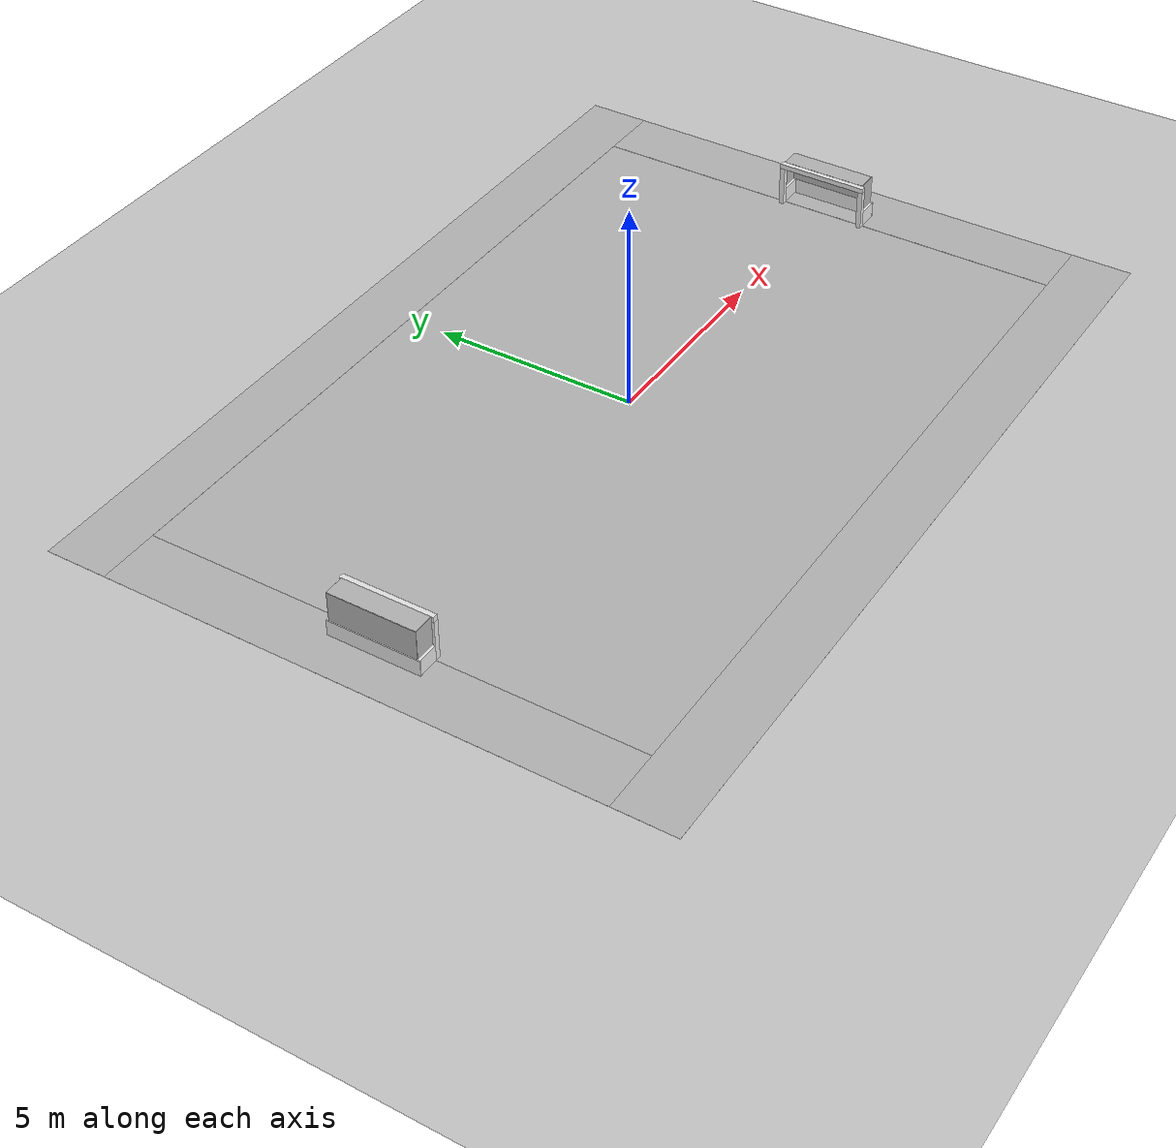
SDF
<?xml version="1.0" ?>
<sdf version='1.5'>
  <world name='RoboCup15MSL'>
<!-- scene -->
    <scene>
      <ambient>0.4 0.4 0.4 1</ambient>
      <background>0.7 0.7 0.7 1</background>
      <shadows>0</shadows>
    </scene>

<!-- spherical_coordinates -->
    <spherical_coordinates>
      <surface_model>EARTH_WGS84</surface_model>
      <latitude_deg>0</latitude_deg>
      <longitude_deg>0</longitude_deg>
      <elevation>0</elevation>
      <heading_deg>0</heading_deg>
    </spherical_coordinates>

<!-- lighting -->
 <light type="directional" name="sun">
    <cast_shadows>true</cast_shadows>

    <pose>0 0 10 0 0 0</pose>
    <diffuse>0.8 0.8 0.8 1</diffuse>
    <specular>0.2 0.2 0.2 1</specular>

    <attenuation>
      <range>1000</range>
      <constant>0.9</constant>
      <linear>0.01</linear>
      <quadratic>0.001</quadratic>
    </attenuation>

    <direction>-0.5 0.1 -0.9</direction>
  </light>

<!-- gui -->
    <gui fullscreen='0'>
      <camera name='user_camera'>
        <pose>0 -16 10 0 0.53 1.57</pose>
        <view_controller>orbit</view_controller>
      </camera>
    </gui>

<!-- physics -->
     <physics type='ode'>
      <max_step_size>0.007</max_step_size>
      <real_time_factor>1</real_time_factor>
      <real_time_update_rate>150</real_time_update_rate>
      <gravity>0 0 -9.8</gravity>
    </physics>

<!-- The same as model://ground_plane -->
    <model name='ground_plane'>
      <static>true</static>
      <link name='link'>
        <collision name='collision'>
          <geometry>
            <plane>
              <normal>0 0 1</normal>
              <size>100 100</size>
            </plane>
          </geometry>
          <surface>
            <friction>
              <ode>
                <mu>100</mu>    <!-- set the friction in field model. here is not useful-->
                <mu2>50</mu2>
              </ode>
            </friction>
            <contact>
              <ode/>
            </contact>
            <bounce/>
          </surface>
          <max_contacts>10</max_contacts>
        </collision>
        <visual name='visual'>
          <cast_shadows>0</cast_shadows>
          <geometry>
            <plane>
              <normal>0 0 1</normal>
              <size>100 100</size>
            </plane>
          </geometry>
          <material>
            <script>
              <uri>file://media/materials/scripts/gazebo.material</uri>
              <name>Gazebo/Grey</name>
            </script>
          </material>
        </visual>
        <velocity_decay>
          <linear>0</linear>
          <angular>0</angular>
        </velocity_decay>
        <self_collide>0</self_collide>
        <kinematic>0</kinematic>
        <gravity>1</gravity>
      </link>
    </model>

<!-- RoboCup 2015 MSL Field -->
    <include>
        <pose>0 0 0 0 0 0</pose>
        <uri>model://RoboCup15_MSL_Field</uri>
        <name>field</name>
        <static>true</static>
    </include>

<!-- RoboCup 2015 MSL Goal left -->
    <include>
        <pose>-9 0 0.01 0 0 3.14 </pose>
        <uri>model://RoboCup15_MSL_Goal</uri>
        <name>left_goal</name>
        <static>true</static>
    </include>

<!-- RoboCup 2015 MSL Goal right -->
   <include>
        <pose>9 0 0.01 0 0 0 </pose>
        <uri>model://RoboCup15_MSL_Goal</uri>
        <name>right_goal</name>
        <static>true</static>
    </include>
  </world>
</sdf>

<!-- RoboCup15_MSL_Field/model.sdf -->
<sdf version="1.4">
  <model name="RoboCup15_MSL_Field">
    <static>true</static>

    <link name="field">
      <pose>0 0 0.01 0 0 0</pose>
      <collision name="collision">
        <geometry>
          <plane>
            <normal>0 0 1</normal>
            <size>18 12</size>
          </plane>
        </geometry>
        <surface>
          <friction>
            <ode>
              <mu>100</mu>
              <mu2>50</mu2>
            </ode>
          </friction>
        </surface>
      </collision>

      <visual name="carpet">
        <cast_shadows>false</cast_shadows>
        <geometry>
          <plane>
            <normal>0 0 1</normal>
            <size>18 12</size>
          </plane>
        </geometry>
        <material>
          <script>
            <uri>file://materials/scripts/</uri>
            <uri>file://materials/textures/</uri>
            <name>RoboCup/Carpet</name>
          </script>
        </material>
      </visual>

       <visual name="base1">
        <pose>0 6.75 0.01 0 0 0</pose>
        <cast_shadows>false</cast_shadows>
        <geometry>
          <plane>
            <normal>0 0 1</normal>
            <size>21.0 1.5</size>
          </plane>
        </geometry>
        <material>
          <script>
            <uri>model://robocup_3Dsim_field/materials/scripts/</uri>
            <uri>model://robocup_3Dsim_field/materials/textures/</uri>
            <name>RoboCup/FieldBorder</name>
          </script>
        </material>
      </visual>
      <visual name="base2">
        <pose>0 -6.75 0.01 0 0 0</pose>
        <cast_shadows>false</cast_shadows>
        <geometry>
          <plane>
            <normal>0 0 1</normal>
            <size>21.0 1.5</size>
          </plane>
        </geometry>
        <material>
          <script>
            <uri>model://robocup_3Dsim_field/materials/scripts/</uri>
            <uri>model://robocup_3Dsim_field/materials/textures/</uri>
            <name>RoboCup/FieldBorder</name>
          </script>
        </material>
      </visual>
      <visual name="base3">
        <pose>9.75 0 0.01 0 0 0</pose>
        <cast_shadows>false</cast_shadows>
        <geometry>
          <plane>
            <normal>0 0 1</normal>
            <size>1.5 12.0</size>
          </plane>
        </geometry>
        <material>
          <script>
            <uri>model://robocup_3Dsim_field/materials/scripts/</uri>
            <uri>model://robocup_3Dsim_field/materials/textures/</uri>
            <name>RoboCup/FieldBorder</name>
          </script>
        </material>
      </visual>
      <visual name="base4">
        <pose>-9.75 0 0.01 0 0 0</pose>
        <cast_shadows>false</cast_shadows>
        <geometry>
          <plane>
            <normal>0 0 1</normal>
            <size>1.5 12.0</size>
          </plane>
        </geometry>
        <material>
          <script>
            <uri>model://robocup_3Dsim_field/materials/scripts/</uri>
            <uri>model://robocup_3Dsim_field/materials/textures/</uri>
            <name>RoboCup/FieldBorder</name>
          </script>
        </material>
      </visual>
    </link>

  </model>
</sdf>

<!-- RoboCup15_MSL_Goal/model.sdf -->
<sdf version="1.4">
  <model name="RoboCup15_MSL_Goal">
    <static>true</static>

    <link name="left_post">
      <pose>-0.0625 1.0625 0.5 0 0 0</pose>
      <collision name="collision">
        <geometry>
          <box><size>0.125 0.125 1.0</size></box>
        </geometry>
      </collision>
      <visual name="visual">
        <geometry>
          <box><size>0.125 0.125 1.0</size></box>
        </geometry>
        <material>
          <script>
            <uri>file://media/materials/scripts/gazebo.material</uri>
            <name>Gazebo/White</name>
          </script>
        </material>
      </visual>
    </link>

    <link name="right_post">
      <pose>-0.0625 -1.0625 0.5 0 0 0</pose>
      <collision name="collision">
        <geometry>
          <box><size>0.125 0.125 1.0</size></box>
        </geometry>
      </collision>
      <visual name="visual">
        <geometry>
          <box><size>0.125 0.125 1.0</size></box>
        </geometry>
        <material>
          <script>
            <uri>file://media/materials/scripts/gazebo.material</uri>
            <name>Gazebo/White</name>
          </script>
        </material>
      </visual>
    </link>

    <link name="crossbar">
      <pose>-0.0625 0 1.0625 0 0 0</pose>
      <collision name="collision">
        <geometry>
          <box><size>0.125 2.25 0.125</size></box>
        </geometry>
      </collision>
      <visual name="visual">
        <geometry>
          <box><size>0.125 2.25 0.125</size></box>
        </geometry>
        <material>
          <script>
            <uri>file://media/materials/scripts/gazebo.material</uri>
            <name>Gazebo/White</name>
          </script>
        </material>
      </visual>
    </link>

    <link name="left_support_horiz_lower">
      <pose>0.25 1.0625 0.2 0 0 0</pose>
      <collision name="collision">
        <geometry>
          <box><size>0.5 0.125 0.4</size></box>
        </geometry>
      </collision>
      <visual name="visual">
        <geometry>
          <box><size>0.5 0.125 0.4</size></box>
        </geometry>
        <material>
          <script>
            <uri>file://media/materials/scripts/gazebo.material</uri>
            <name>Gazebo/White</name>
          </script>
        </material>
      </visual>
    </link>

    <link name="right_support_horiz_lower">
      <pose>0.25 -1.0625 0.2 0 0 0</pose>
      <collision name="collision">
        <geometry>
          <box><size>0.5 0.125 0.4</size></box>
        </geometry>
      </collision>
      <visual name="visual">
        <geometry>
          <box><size>0.5 0.125 0.4</size></box>
        </geometry>
        <material>
          <script>
            <uri>file://media/materials/scripts/gazebo.material</uri>
            <name>Gazebo/White</name>
          </script>
        </material>
      </visual>
    </link>

        <link name="center_support_horiz_lower">
      <pose>0.51 0 0.2 0 0 0</pose>
      <collision name="collision">
        <geometry>
          <box><size>0.02 2.25 0.4</size></box>
        </geometry>
      </collision>
      <visual name="visual">
        <geometry>
          <box><size>0.02 2.25 0.4</size></box>
        </geometry>
        <material>
          <script>
            <uri>file://media/materials/scripts/gazebo.material</uri>
            <name>Gazebo/White</name>
          </script>
        </material>
      </visual>
    </link>

    <link name="center_net">
      <pose>0.5 0 0.7625 0 0 0</pose>
      <collision name="collision">
        <geometry>
          <box><size>0.01 2.125 0.725</size></box>
        </geometry>
      </collision>
      <visual name="visual">
        <geometry>
          <box><size>0.01 2.125 0.725</size></box>
        </geometry>
        <material>
          <script>
            <uri>file://materials/scripts/</uri>
            <uri>file://materials/textures/</uri>
            <name>RoboCup/Net</name>
          </script>
        </material>
      </visual>
    </link>

    <link name="left_net">
      <pose>0.25 1.0625 0.7625 0 0 0</pose>
      <collision name="collision">
        <geometry>
          <box>
            <size>0.5 0.01 0.725</size>
          </box>
        </geometry>
      </collision>
      <visual name="visual">
        <geometry>
          <box>
            <size>0.5 0.01 0.725</size>
          </box>
        </geometry>
        <material>
          <script>
            <uri>file://materials/scripts/</uri>
            <uri>file://materials/textures/</uri>
            <name>RoboCup/Net</name>
          </script>
        </material>
      </visual>
    </link>

    <link name="right_net">
      <pose>0.25 -1.0625 0.7625 0 0 0</pose>
      <collision name="collision">
        <geometry>
          <box>
            <size>0.5 0.01 0.725</size>
          </box>
        </geometry>
      </collision>
      <visual name="visual">
        <geometry>
          <box>
            <size>0.5 0.01 0.725</size>
          </box>
        </geometry>
        <material>
          <script>
            <uri>file://materials/scripts/</uri>
            <uri>file://materials/textures/</uri>
            <name>RoboCup/Net</name>
          </script>
        </material>
      </visual>
    </link>

    <link name='upper_net'>
      <pose>0.25 0 1.125 0 0 0</pose>
      <collision name='collision'>
        <geometry>
          <box><size>0.5 2.125 0.01</size></box>
        </geometry>
        <max_contacts>10</max_contacts>
      </collision>
      <visual name='visual'>
        <geometry>
          <box><size>0.5 2.125 0.01</size></box>
        </geometry>
        <material>
          <script>
            <uri>model://robocup09_spl_field/materials/scripts/</uri>
            <uri>model://robocup09_spl_field/materials/textures/</uri>
            <name>RoboCup/Net</name>
          </script>
        </material>
      </visual>
    </link>

  </model>
</sdf>
